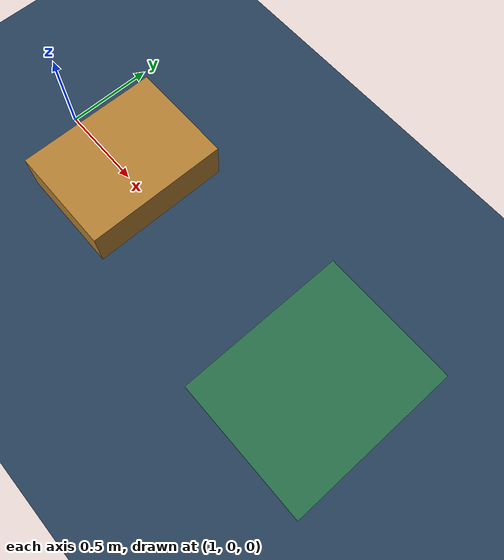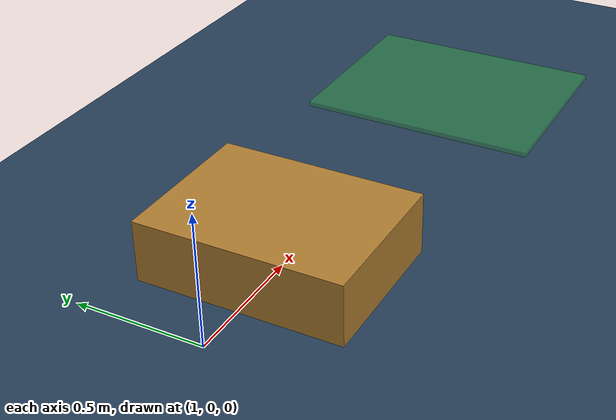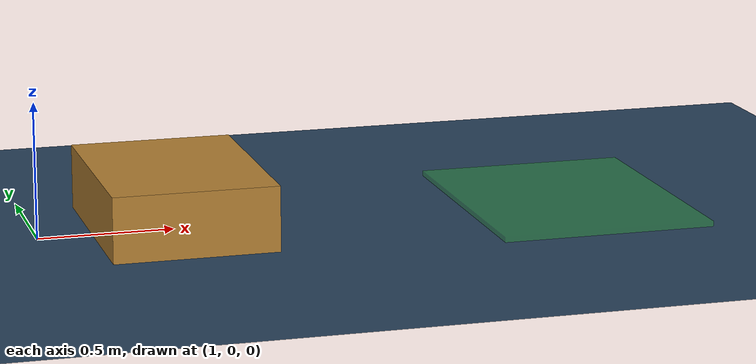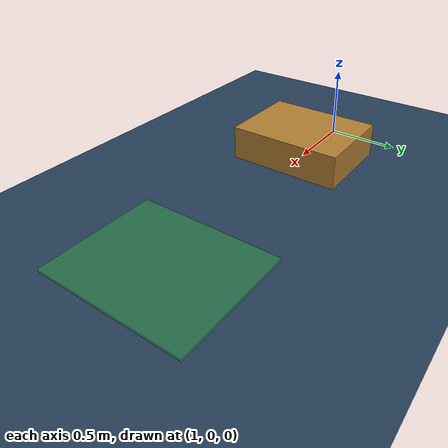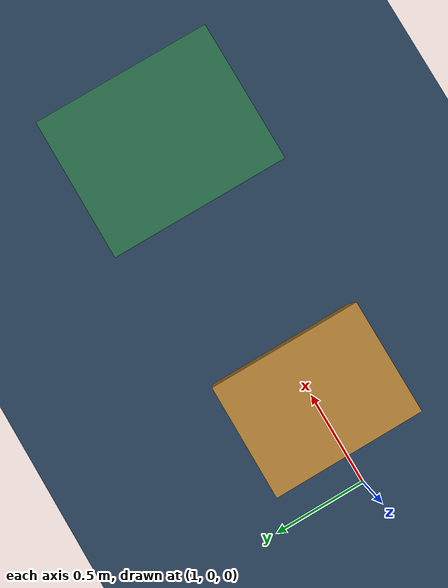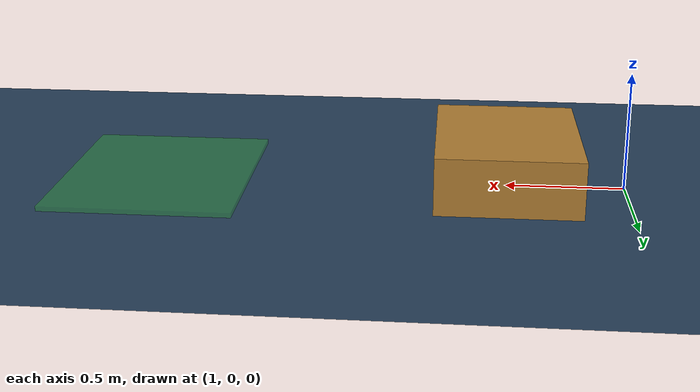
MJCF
<?xml version="1.0" encoding="utf-8"?>
<mujoco model="push_box_scene">
  <visual>
    <headlight diffuse="0.6 0.6 0.6" ambient="0.35 0.35 0.35" specular="0 0 0"/>
    <global azimuth="-120" elevation="-25"/>
  </visual>

  <asset>
    <texture type="skybox" builtin="gradient" rgb1="0.35 0.5 0.7" rgb2="0 0 0" width="512" height="3072"/>
    <texture type="2d" name="scene_groundplane" builtin="checker" mark="edge" rgb1="0.2 0.3 0.4" rgb2="0.1 0.2 0.3" markrgb="0.8 0.8 0.8" width="300" height="300"/>
    <material name="scene_groundplane" texture="scene_groundplane" texuniform="true" texrepeat="5 5" reflectance="0.2"/>
  </asset>

  <worldbody>
    <!-- castshadow=false: 同 flat.xml, 大平面阴影贴图渲染极慢 -->
    <light pos="0 0 3.5" dir="0 0 -1" directional="true" castshadow="false"/>
    <geom name="floor" type="plane" size="20 20 0.05" material="scene_groundplane"/>

    <body name="support_box" pos="1.5 0 0.12">
      <freejoint/>
      <geom name="support_box_geom" type="box" size="0.3 0.4 0.12" rgba="0.7 0.5 0.2 1" mass="8"/>
    </body>

    <geom name="goal_mark" type="box" pos="3 0 0.01" size="0.4 0.5 0.01" rgba="0.2 0.8 0.2 0.35" contype="0" conaffinity="0"/>

  </worldbody>
</mujoco>
